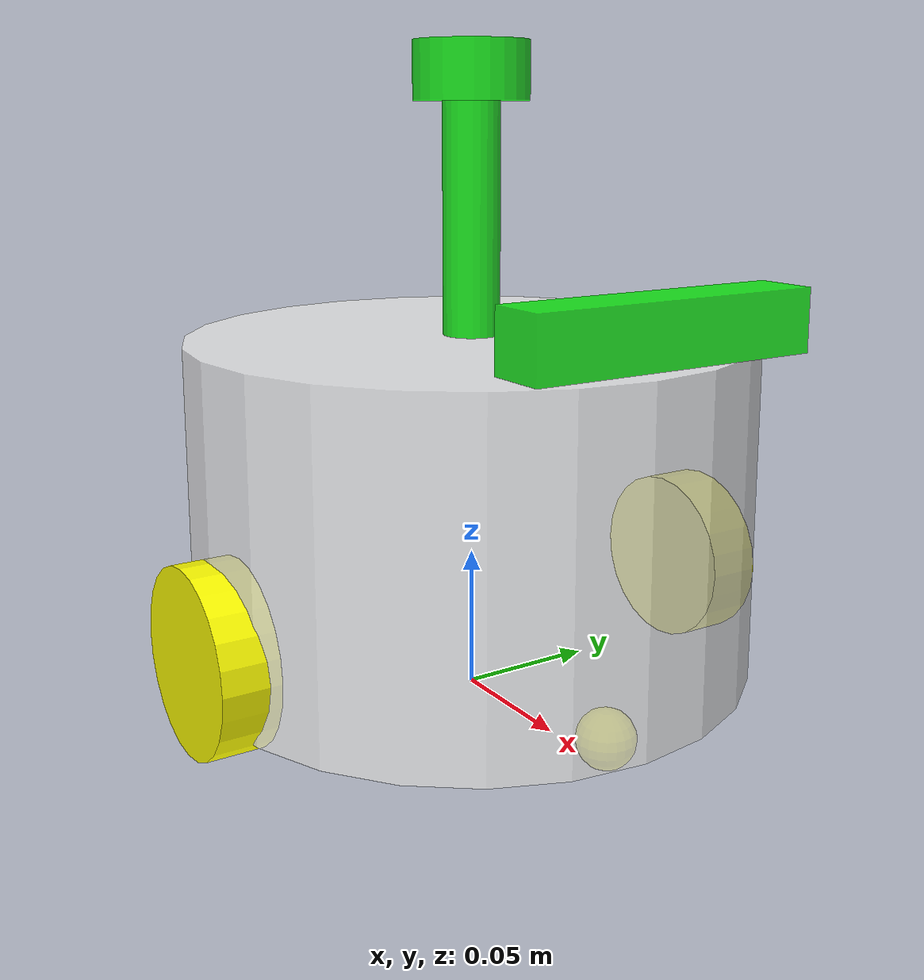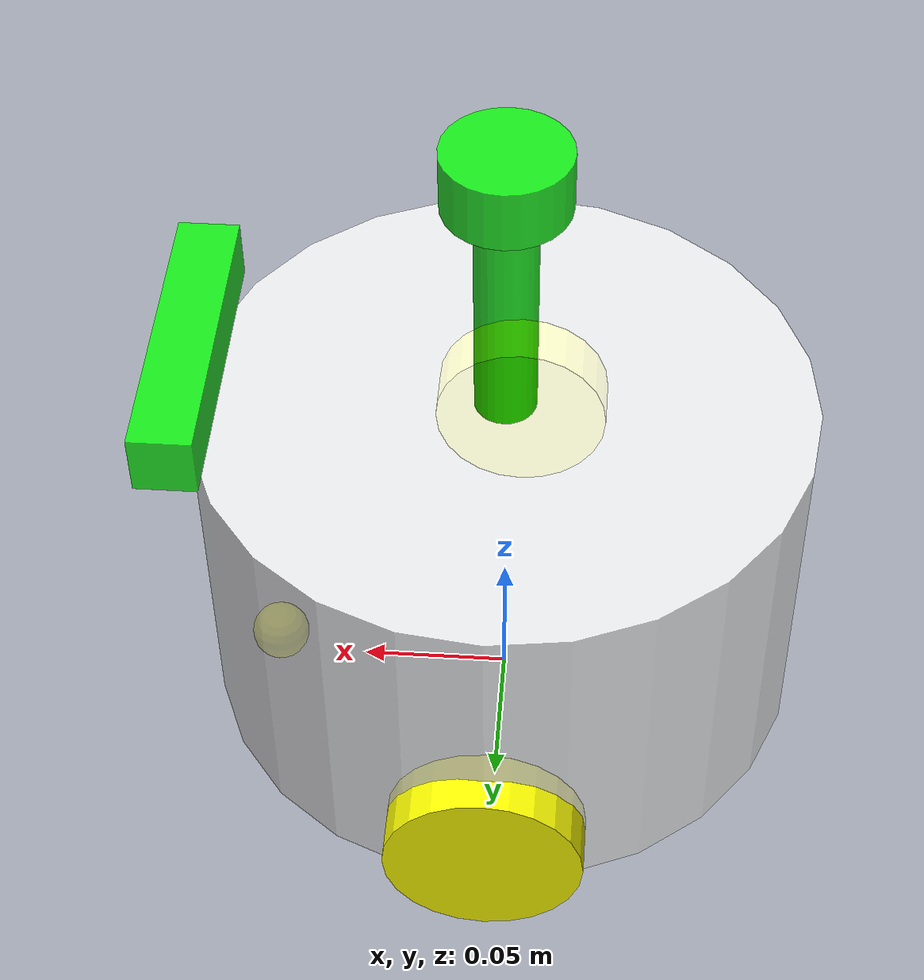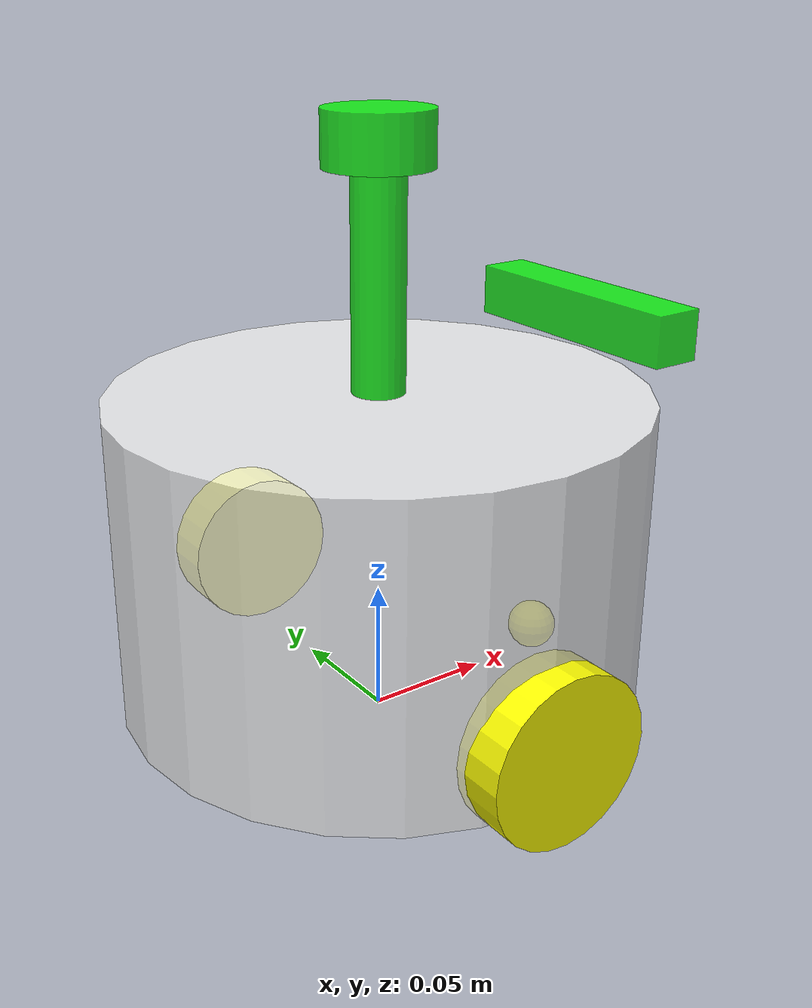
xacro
<?xml version="1.0"?>
<robot xmlns:xacro="http://www.ros.org/wiki/xacro" name="fishbot">

    <!-- ========== 引入各个部件 ========== -->
    <xacro:include filename="base.urdf.xacro"/>
    <xacro:include filename="wheel.urdf.xacro"/>
    <xacro:include filename="caster.urdf.xacro"/>
    <xacro:include filename="sensor/imu.urdf.xacro"/>
    <xacro:include filename="sensor/laser.urdf.xacro"/>
    <xacro:include filename="sensor/camera.urdf.xacro"/>
    <xacro:include filename="plugins/gazebo_control_plugin.xacro"/>
    <xacro:include filename="plugins/gazebo_sensor_plugin.xacro"/>

    <!-- ========== 参数（要改尺寸就改这里）========== -->
    <xacro:property name="base_length" value="0.12"/>
    <xacro:property name="base_radius" value="0.10"/>
    <xacro:property name="wheel_sep"   value="0.20"/>

    <!-- ========== 装配 ========== -->
    <xacro:base_xacro length="${base_length}" radius="${base_radius}"/>

    <!-- 左右驱动轮：y 方向各偏 ±轮距/2，z 让轮心落在 0.032（= 轮半径，刚好着地）
         车身中心在 z = base_length/2 + 0.01 = 0.07，所以相对车身是 0.032 - 0.07 = -0.038 -->
    <xacro:wheel_xacro wheel_name="left"  xyz="0  ${wheel_sep/2} -0.038"/>
    <xacro:wheel_xacro wheel_name="right" xyz="0 -${wheel_sep/2} -0.038"/>

    <!-- 万向轮：放在车头前方，球心离地 0.01 -->
    <xacro:caster_xacro xyz="0.08 0 -0.06"/>

    <!-- 传感器 -->
    <xacro:imu_xacro    xyz="0 0 0.02"/>
    <xacro:laser_xacro  xyz="0 0 0.10"/>
    <xacro:camera_xacro xyz="0.10 0 0.075"/>

    <!-- ========== 仿真插件 ========== -->
    <xacro:gazebo_control_plugin/>
    <xacro:gazebo_sensor_plugin/>

</robot>

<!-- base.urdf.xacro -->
<robot xmlns:xacro="http://www.ros.org/wiki/xacro">
    <xacro:include filename="common_inertia.xacro"/>

    <xacro:macro name="base_xacro" params="length radius">

        <!-- ① 导航用的"贴地虚拟根"：Nav2 要求机器人有一个 z=0 的根坐标系 -->
        <link name="base_footprint"/>

        <!-- ② 车身本体 -->
        <link name="base_link">
            <visual>
                <origin xyz="0 0 0" rpy="0 0 0"/>
                <geometry>
                    <cylinder radius="${radius}" length="${length}"/>
                </geometry>
                <material name="white">
                    <color rgba="1.0 1.0 1.0 0.8"/>
                </material>
            </visual>

            <!-- 仿真必须有 collision，否则会直接穿过地面 -->
            <collision>
                <origin xyz="0 0 0" rpy="0 0 0"/>
                <geometry>
                    <cylinder radius="${radius}" length="${length}"/>
                </geometry>
            </collision>

            <!-- 仿真必须有 inertial，否则物理引擎会警告并给个乱猜的质量 -->
            <xacro:cylinder_inertia m="1.0" r="${radius}" h="${length}"/>
        </link>

        <joint name="base_joint" type="fixed">
            <parent link="base_footprint"/>
            <child link="base_link"/>
            <!-- 车身抬高到 ${length/2 + 0.01}，让轮子刚好着地 -->
            <origin xyz="0 0 ${length/2 + 0.01}" rpy="0 0 0"/>
        </joint>

    </xacro:macro>
</robot>

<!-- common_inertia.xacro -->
<robot xmlns:xacro="http://www.ros.org/wiki/xacro">

    <xacro:macro name="box_inertia" params="m x y z">
        <inertial>
            <origin xyz="0.0 0.0 0.0" rpy="0.0 0.0 0.0"/>
            <mass value="${m}"/>
            <inertia ixx="${m*(y*y+z*z)/12}" ixy="0" ixz="0"
                     iyy="${m*(x*x+z*z)/12}" iyz="0"
                     izz="${m*(x*x+y*y)/12}"/>
        </inertial>
    </xacro:macro>

    <xacro:macro name="cylinder_inertia" params="m r h rpy:='0 0 0'">
        <inertial>
            <origin xyz="0.0 0.0 0.0" rpy="${rpy}"/>
            <mass value="${m}"/>
            <inertia ixx="${m*(3*r*r+h*h)/12}" ixy="0" ixz="0"
                     iyy="${m*(3*r*r+h*h)/12}" iyz="0"
                     izz="${m*r*r/2}"/>
        </inertial>
    </xacro:macro>
    <xacro:macro name="sphere_inertia" params="m r">
        <inertial>
            <origin xyz="0 0 0" rpy="0 0 0"/>
            <mass value="${m}"/>
            <inertia ixx="${2*m*r*r/5}" ixy="0" ixz="0"
                     iyy="${2*m*r*r/5}" iyz="0"
                     izz="${2*m*r*r/5}"/>
        </inertial>
    </xacro:macro>
</robot>

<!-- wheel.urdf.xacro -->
<robot xmlns:xacro="http://www.ros.org/wiki/xacro">
    <xacro:include filename="common_inertia.xacro"/>

    <xacro:macro name="wheel_xacro" params="wheel_name xyz">
        <link name="${wheel_name}_wheel_link">
            <visual>
                <!-- 圆柱默认轴沿 Z；绕 X 转 90° 后轴变成 Y，才能绕 Y 滚动 -->
                <origin xyz="0 0 0" rpy="1.5707963 0 0"/>
                <geometry>
                    <cylinder radius="0.032" length="0.02"/>
                </geometry>
                <material name="yellow">
                    <color rgba="1.0 1.0 0.0 1.0"/>
                </material>
            </visual>

            <collision>
                <origin xyz="0 0 0" rpy="1.5707963 0 0"/>
                <geometry>
                    <cylinder radius="0.032" length="0.02"/>
                </geometry>
            </collision>

            <!-- rpy 要和上面一致，惯量才跟着转过去 -->
            <xacro:cylinder_inertia m="0.05" r="0.032" h="0.02" rpy="1.5707963 0 0"/>
        </link>

        <joint name="${wheel_name}_wheel_joint" type="continuous">
            <origin xyz="${xyz}"/>
            <parent link="base_link"/>
            <child link="${wheel_name}_wheel_link"/>
            <axis xyz="0 1 0"/>
        </joint>

        <!-- 橡胶胎要有抓地力，不然原地打滑、里程计乱飘 -->
        <gazebo reference="${wheel_name}_wheel_link">
            <mu1 value="20.0"/>
            <mu2 value="20.0"/>
            <kp value="1000000000.0"/>
            <kd value="1.0"/>
        </gazebo>
    </xacro:macro>
</robot>

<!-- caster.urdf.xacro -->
<robot xmlns:xacro="http://www.ros.org/wiki/xacro">
    <xacro:include filename="common_inertia.xacro"/>

    <xacro:macro name="caster_xacro" params="xyz">
        <link name="caster_link">
            <visual>
                <origin xyz="0 0 0" rpy="0 0 0"/>
                <geometry>
                    <sphere radius="0.01"/>
                </geometry>
                <material name="yellow">
                    <color rgba="1.0 1.0 0.0 1.0"/>
                </material>
            </visual>
            <collision>
                <origin xyz="0 0 0" rpy="0 0 0"/>
                <geometry>
                    <sphere radius="0.01"/>
                </geometry>
            </collision>
            <xacro:sphere_inertia m="0.01" r="0.01"/>
        </link>

        <joint name="caster_joint" type="fixed">
            <origin xyz="${xyz}"/>
            <parent link="base_link"/>
            <child link="caster_link"/>
        </joint>

        <!-- 万向轮摩擦必须为 0：有摩擦就会和主动轮"别着"，机器人走不直 -->
        <gazebo reference="caster_link">
            <mu1 value="0.0"/>
            <mu2 value="0.0"/>
            <kp value="1000000000.0"/>
            <kd value="1.0"/>
        </gazebo>
    </xacro:macro>
</robot>

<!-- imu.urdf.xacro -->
<robot xmlns:xacro="http://www.ros.org/wiki/xacro">
    <xacro:include filename="../common_inertia.xacro"/>

    <xacro:macro name="imu_xacro" params="xyz">
        <!-- link 名和 joint 的 child 必须一致，这里统一叫 imu_link -->
        <link name="imu_link">
            <visual>
                <origin xyz="0 0 0" rpy="0 0 0"/>
                <geometry>
                    <box size="0.02 0.02 0.02"/>
                </geometry>
                <material name="black">
                    <color rgba="0.0 0.0 0.0 0.8"/>
                </material>
            </visual>
            <collision>
                <origin xyz="0 0 0" rpy="0 0 0"/>
                <geometry>
                    <box size="0.02 0.02 0.02"/>
                </geometry>
            </collision>
            <xacro:box_inertia m="0.01" x="0.02" y="0.02" z="0.02"/>
        </link>

        <joint name="imu_joint" type="fixed">
            <origin xyz="${xyz}"/>
            <parent link="base_link"/>
            <child link="imu_link"/>
        </joint>
    </xacro:macro>
</robot>

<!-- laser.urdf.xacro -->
<robot xmlns:xacro="http://www.ros.org/wiki/xacro">
    <xacro:include filename="../common_inertia.xacro"/>

    <xacro:macro name="laser_xacro" params="xyz">
        <!-- 雷达支撑杆 -->
        <link name="laser_cylinder_link">
            <visual>
                <origin xyz="0 0 0" rpy="0 0 0"/>
                <geometry>
                    <cylinder length="0.10" radius="0.01"/>
                </geometry>
                <material name="green">
                    <color rgba="0.0 1.0 0.0 0.8"/>
                </material>
            </visual>
            <collision>
                <origin xyz="0 0 0" rpy="0 0 0"/>
                <geometry>
                    <cylinder length="0.10" radius="0.01"/>
                </geometry>
            </collision>
            <xacro:cylinder_inertia m="0.02" r="0.01" h="0.10"/>
        </link>

        <joint name="laser_cylinder_joint" type="fixed">
            <parent link="base_link"/>
            <child link="laser_cylinder_link"/>
            <origin xyz="${xyz}"/>
        </joint>

        <!-- 雷达本体 -->
        <link name="laser_link">
            <visual>
                <origin xyz="0 0 0" rpy="0 0 0"/>
                <geometry>
                    <cylinder length="0.02" radius="0.02"/>
                </geometry>
                <material name="green">
                    <color rgba="0.0 1.0 0.0 0.8"/>
                </material>
            </visual>
            <collision>
                <origin xyz="0 0 0" rpy="0 0 0"/>
                <geometry>
                    <cylinder length="0.02" radius="0.02"/>
                </geometry>
            </collision>
            <xacro:cylinder_inertia m="0.02" r="0.02" h="0.02"/>
        </link>

        <joint name="laser_joint" type="fixed">
            <parent link="laser_cylinder_link"/>
            <child link="laser_link"/>
            <origin xyz="0 0 0.05"/>
        </joint>
    </xacro:macro>
</robot>

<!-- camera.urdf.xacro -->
<robot xmlns:xacro="http://www.ros.org/wiki/xacro">
    <xacro:include filename="../common_inertia.xacro"/>

    <!-- ⚠️ 注意是 params，不是 parame（原草稿里拼错了，xacro 会直接报错） -->
    <xacro:macro name="camera_xacro" params="xyz">
        <link name="camera_link">
            <visual>
                <origin xyz="0 0 0" rpy="0 0 0"/>
                <geometry>
                    <box size="0.02 0.10 0.02"/>
                </geometry>
                <material name="green">
                    <color rgba="0.0 1.0 0.0 0.8"/>
                </material>
            </visual>
            <collision>
                <origin xyz="0 0 0" rpy="0 0 0"/>
                <geometry>
                    <box size="0.02 0.10 0.02"/>
                </geometry>
            </collision>
            <xacro:box_inertia m="0.01" x="0.02" y="0.10" z="0.02"/>
        </link>

        <joint name="camera_joint" type="fixed">
            <origin xyz="${xyz}"/>
            <parent link="base_link"/>
            <child link="camera_link"/>
        </joint>

        <!-- 光学坐标系：ROS 约定相机是"z 向前、x 向右、y 向下"，
             而 URDF 里 link 是"x 向前"。这个 rpy 就是那两次旋转。 -->
        <link name="camera_optical_link"/>

        <joint name="camera_optical_joint" type="fixed">
            <origin xyz="0 0 0" rpy="-1.5708 0 -1.5708"/>
            <parent link="camera_link"/>
            <child link="camera_optical_link"/>
        </joint>
    </xacro:macro>
</robot>
